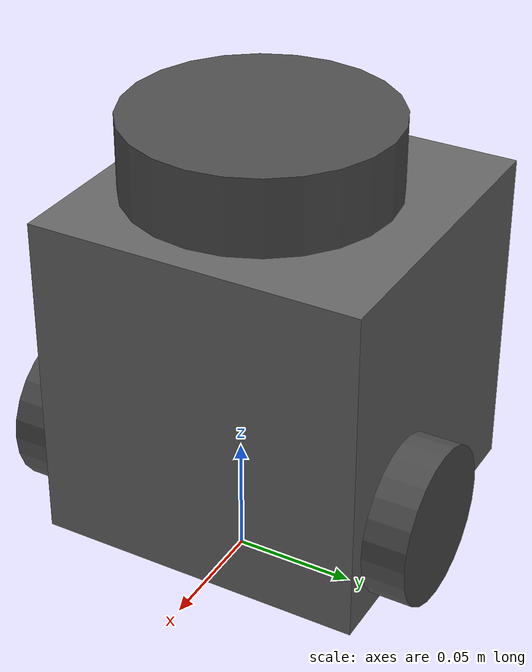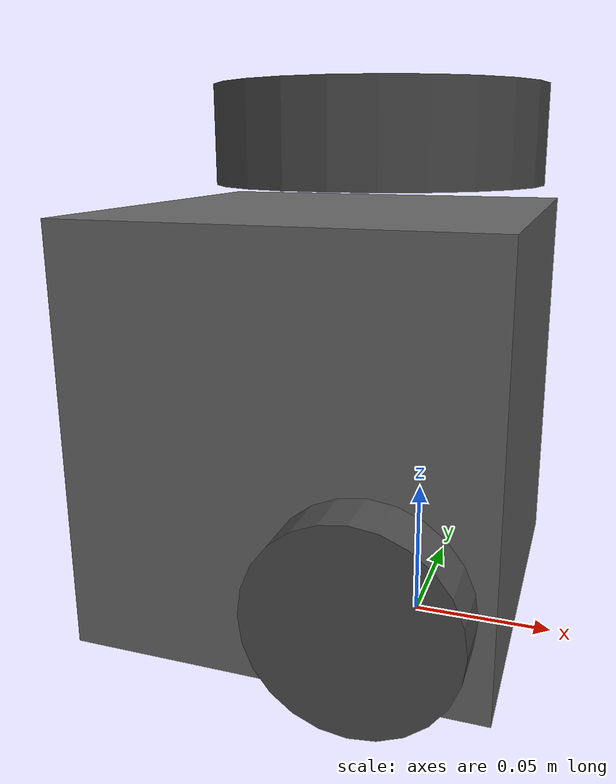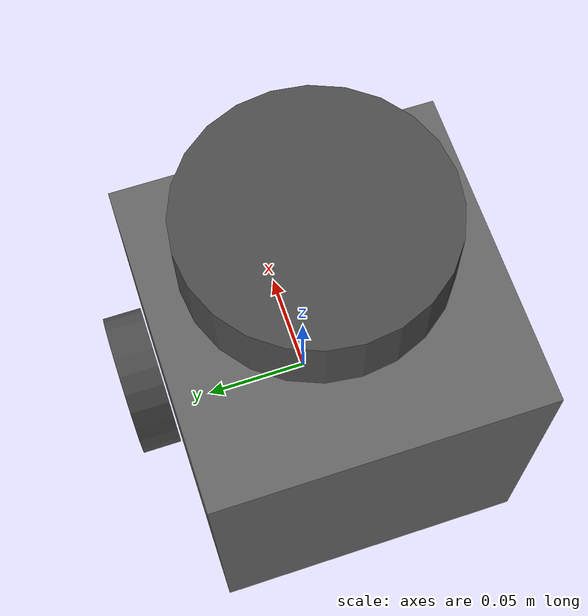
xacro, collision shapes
<?xml version="1.0" ?>
<robot xmlns:xacro="http://www.ros.org/wiki/xacro" name="turtlebot3_burger">

  <!-- Define reusable properties -->
  <xacro:property name="wheel_radius" value="0.033"/>
  <xacro:property name="wheel_thickness" value="0.018"/>
  <xacro:property name="base_length" value="0.140"/>
  <xacro:property name="base_height" value="0.143"/>
  <xacro:property name="imu_position" value="-0.032 0 0.068"/>
  <xacro:property name="lidar_position" value="-0.032 0 0.172"/>
  <xacro:property name="caster_position" value="-0.081 0 -0.004"/>
  <xacro:property name="base_color" value="light_black"/>
  <xacro:property name="wheel_color" value="dark"/>

  <!-- Define colors -->
  <material name="black">
      <color rgba="0.0 0.0 0.0 1.0"/>
  </material>
  <material name="dark">
      <color rgba="0.3 0.3 0.3 1.0"/>
  </material>
  <material name="light_black">
      <color rgba="0.4 0.4 0.4 1.0"/>
  </material>
  <material name="blue">
      <color rgba="0.0 0.0 0.8 1.0"/>
  </material>
  <material name="green">
      <color rgba="0.0 0.8 0.0 1.0"/>
  </material>
  <material name="grey">
      <color rgba="0.5 0.5 0.5 1.0"/>
  </material>
  <material name="orange">
      <color rgba="1.0 0.4235 0.0392 1.0"/>
  </material>
  <material name="brown">
      <color rgba="0.8706 0.8118 0.7647 1.0"/>
  </material>
  <material name="red">
      <color rgba="0.8 0.0 0.0 1.0"/>
  </material>
  <material name="white">
      <color rgba="1.0 1.0 1.0 1.0"/>
  </material>

  <!-- Base -->
  <link name="base_footprint"/>
  <joint name="base_joint" type="fixed">
    <parent link="base_footprint"/>
    <child link="base_link"/>
    <origin xyz="0.0 0.0 0.010" rpy="0 0 0"/>
  </joint>
  <link name="base_link">
    <visual>
      <origin xyz="-0.032 0 0.0" rpy="0 0 0"/>
      <geometry>
        <mesh filename="package://turtlebot3_description/meshes/bases/burger_base.stl" scale="0.001 0.001 0.001"/>
      </geometry>
      <material name="${base_color}"/>
    </visual>
    <collision>
      <origin xyz="-0.032 0 0.070" rpy="0 0 0"/>
      <geometry>
        <box size="${base_length} ${base_length} ${base_height}"/>
      </geometry>
    </collision>
    <inertial>
      <origin xyz="0 0 0" rpy="0 0 0"/>
      <mass value="0.82573504"/>
      <inertia ixx="2.2124416e-03" ixy="-1.2294101e-05" ixz="3.4938785e-05" iyy="2.1193702e-03" iyz="-5.0120904e-06" izz="2.0064271e-03"/>
    </inertial>
  </link>

  <!-- Wheels -->
  <joint name="wheel_left_joint" type="continuous">
    <parent link="base_link"/>
    <child link="wheel_left_link"/>
    <origin xyz="0.0 0.08 ${wheel_radius}" rpy="-1.57 0 0"/>
    <axis xyz="0 0 1"/>
  </joint>
  <link name="wheel_left_link">
    <visual>
      <origin xyz="0 0 0" rpy="1.57 0 0"/>
      <geometry>
        <mesh filename="package://turtlebot3_description/meshes/wheels/left_tire.stl" scale="0.001 0.001 0.001"/>
      </geometry>
      <material name="${wheel_color}"/>
    </visual>
    <collision>
      <origin xyz="0 0 0" rpy="0 0 0"/>
      <geometry>
        <cylinder length="${wheel_thickness}" radius="${wheel_radius}"/>
      </geometry>
    </collision>
    <inertial>
      <origin xyz="0 0 0"/>
      <mass value="0.02849894"/>
      <inertia ixx="1.1175580e-05" ixy="-4.2369783e-11" ixz="-5.9381719e-09" iyy="1.1192413e-05" iyz="-1.4400107e-11" izz="2.0712558e-05"/>
    </inertial>
  </link>
  <joint name="wheel_right_joint" type="continuous">
    <parent link="base_link"/>
    <child link="wheel_right_link"/>
    <origin xyz="0.0 -0.08 ${wheel_radius}" rpy="-1.57 0 0"/>
    <axis xyz="0 0 1"/>
  </joint>
  <link name="wheel_right_link">
    <visual>
      <origin xyz="0 0 0" rpy="1.57 0 0"/>
      <geometry>
        <mesh filename="package://turtlebot3_description/meshes/wheels/right_tire.stl" scale="0.001 0.001 0.001"/>
      </geometry>
      <material name="${wheel_color}"/>
    </visual>
    <collision>
      <origin xyz="0 0 0" rpy="0 0 0"/>
      <geometry>
        <cylinder length="${wheel_thickness}" radius="${wheel_radius}"/>
      </geometry>
    </collision>
    <inertial>
      <origin xyz="0 0 0"/>
      <mass value="0.02849894"/>
      <inertia ixx="1.1175580e-05" ixy="-4.2369783e-11" ixz="-5.9381719e-09" iyy="1.1192413e-05" iyz="-1.4400107e-11" izz="2.0712558e-05"/>
    </inertial>
  </link>

  <!-- Back Caster -->
  <joint name="caster_back_joint" type="fixed">
    <parent link="base_link"/>
    <child link="caster_back_link"/>
    <origin xyz="${caster_position}" rpy="-1.57 0 0"/>
  </joint>
  <link name="caster_back_link">
    <collision>
      <origin xyz="0 0.001 0" rpy="0 0 0"/>
      <geometry>
        <box size="0.030 0.009 0.020"/>
      </geometry>
    </collision>
    <inertial>
      <origin xyz="0 0 0"/>
      <mass value="0.005"/>
      <inertia ixx="0.001" ixy="0.0" ixz="0.0" iyy="0.001" iyz="0.0" izz="0.001"/>
    </inertial>
  </link>

  <!-- IMU -->
  <joint name="imu_joint" type="fixed">
    <parent link="base_link"/>
    <child link="imu_link"/>
    <origin xyz="${imu_position}" rpy="0 0 0"/>
  </joint>
  <link name="imu_link"/>

  <!-- LIDAR -->
  <joint name="scan_joint" type="fixed">
    <parent link="base_link"/>
    <child link="base_scan"/>
    <origin xyz="${lidar_position}" rpy="0 0 0"/>
  </joint>
  <link name="base_scan">
    <visual>
      <origin xyz="0 0 0.0" rpy="0 0 0"/>
      <geometry>
        <mesh filename="package://turtlebot3_description/meshes/sensors/lds.stl" scale="0.001 0.001 0.001"/>
      </geometry>
      <material name="${wheel_color}"/>
    </visual>
    <collision>
      <origin xyz="0.015 0 -0.0065" rpy="0 0 0"/>
      <geometry>
        <cylinder length="0.0315" radius="0.055"/>
      </geometry>
    </collision>
    <inertial>
      <mass value="0.114"/>
      <origin xyz="0 0 0"/>
      <inertia ixx="0.001" ixy="0.0" ixz="0.0" iyy="0.001" iyz="0.0" izz="0.001"/>
    </inertial>
  </link>

</robot>
